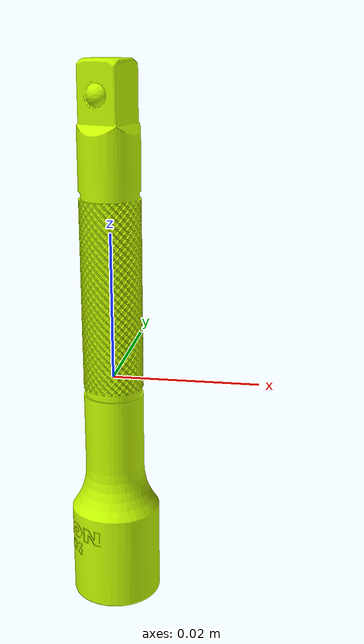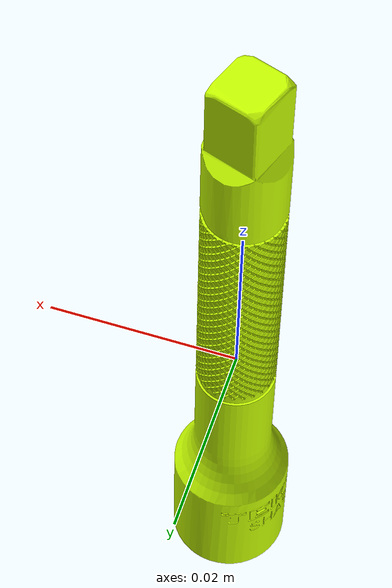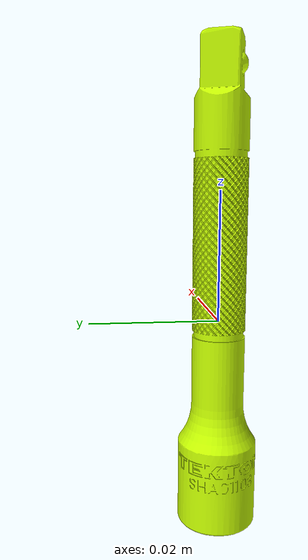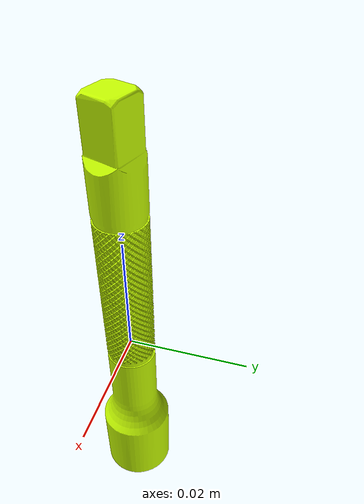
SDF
<?xml version="1.0"?>
<sdf version="1.7">
  <model name="socket_extension_1_4in_75mm_bright">
    <pose>0 0 0 0 0 0</pose>
    <static>false</static>
    <link name="link">
      <!-- link frame = tool CoM; Z = long axis (+ toward tool end), X = forward, Y = Z x X -->
      <inertial>
        <pose>0 0 0 0 0 0</pose>
        <mass>0.033438</mass>
        <inertia>
          <ixx>1.569459e-05</ixx>
          <ixy>-2.551189e-13</ixy>
          <ixz>9.485389e-11</ixz>
          <iyy>1.569393e-05</iyy>
          <iyz>2.531208e-10</iyz>
          <izz>4.235445e-07</izz>
        </inertia>
      </inertial>
      <collision name="collision">
        <geometry>
          <mesh>
            <uri>model://socket_extension_1_4in_75mm/meshes/socket_extension_1_4in_75mm.dae</uri>
          </mesh>
        </geometry>
      </collision>
      <visual name="visual">
        <geometry>
          <mesh>
            <uri>model://socket_extension_1_4in_75mm/meshes/socket_extension_1_4in_75mm.dae</uri>
          </mesh>
        </geometry>
        <material>
          <ambient>0.353 0.450 0.000 1.0</ambient>
          <diffuse>0.785 1.000 0.000 1.0</diffuse>
          <specular>0.85 0.85 0.85 1.0</specular>
          <emissive>0 0 0 1.0</emissive>
        </material>
      </visual>
    </link>
  </model>
</sdf>
